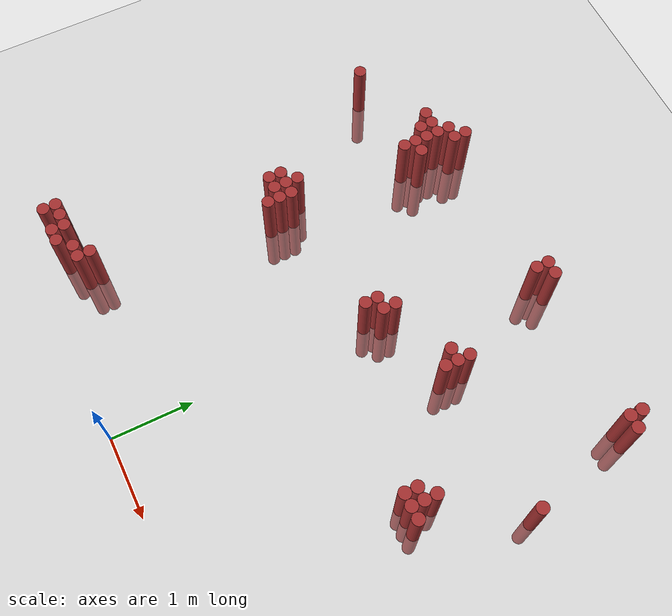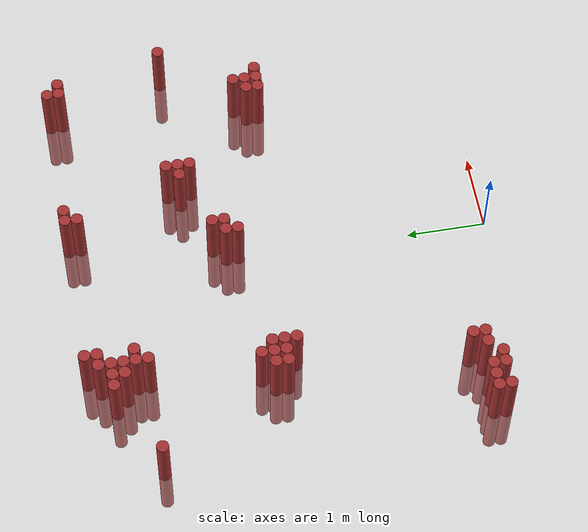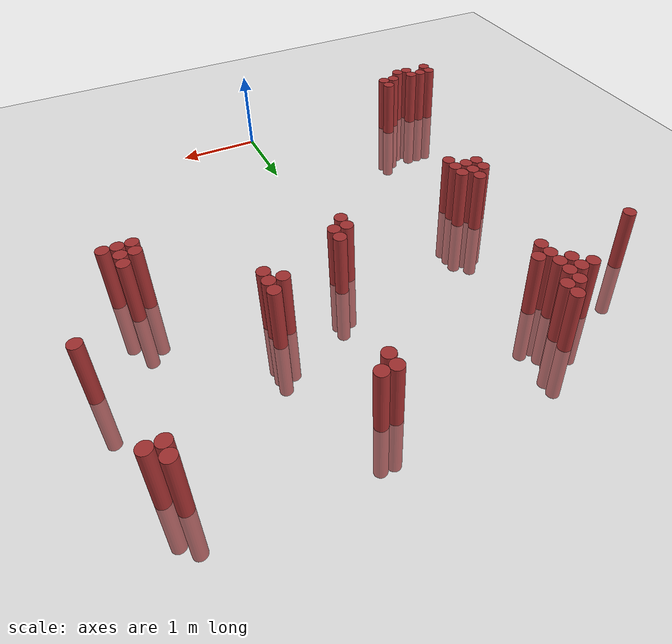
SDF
<sdf version="1.6">
 <world name="default">
  <model name="ground_plane">
   <static>1</static>
   <link name="link">
    <collision name="collision">
     <geometry><plane><normal>0 0 1</normal><size>100 100</size></plane></geometry>
     <surface><friction><ode><mu>100</mu><mu2>50</mu2></ode></friction></surface>
    </collision>
    <visual name="visual">
     <cast_shadows>0</cast_shadows>
     <geometry><plane><normal>0 0 1</normal><size>100 100</size></plane></geometry>
     <material>
      <script><uri>file://media/materials/scripts/gazebo.material</uri><name>Gazebo/Grey</name></script>
     </material>
    </visual>
   </link>
  </model>
  <model name="unit_cylinder_286">
   <static>1</static>
   <pose>-2.825000 4.525000 0.000000 0.000000 0.000000 0.000000</pose>
   <link name="link">
    <inertial>
     <mass>1</mass>
     <inertia><ixx>0.145833</ixx><ixy>0</ixy><ixz>0</ixz><iyy>0.145833</iyy><iyz>0</iyz><izz>0.125</izz></inertia>
    </inertial>
    <collision name="collision">
     <geometry><cylinder><radius>0.075000</radius><length>1.5</length></cylinder></geometry>
    </collision>
    <visual name="visual">
     <geometry><cylinder><radius>0.075000</radius><length>1.5</length></cylinder></geometry>
     <material>
      <ambient>0.648000 0.192000 0.192000 1</ambient>
      <diffuse>0.648000 0.192000 0.192000 1</diffuse>
     </material>
     <material>
      <script><name>Gazebo/Grey</name><uri>file://media/materials/scripts/gazebo.material</uri></script>
     </material>
    </visual>
   </link>
  </model>
  <model name="unit_cylinder_291">
   <static>1</static>
   <pose>-2.675000 0.325000 0.000000 0.000000 0.000000 0.000000</pose>
   <link name="link">
    <inertial>
     <mass>1</mass>
     <inertia><ixx>0.145833</ixx><ixy>0</ixy><ixz>0</ixz><iyy>0.145833</iyy><iyz>0</iyz><izz>0.125</izz></inertia>
    </inertial>
    <collision name="collision">
     <geometry><cylinder><radius>0.075000</radius><length>1.5</length></cylinder></geometry>
    </collision>
    <visual name="visual">
     <geometry><cylinder><radius>0.075000</radius><length>1.5</length></cylinder></geometry>
     <material>
      <ambient>0.648000 0.192000 0.192000 1</ambient>
      <diffuse>0.648000 0.192000 0.192000 1</diffuse>
     </material>
     <material>
      <script><name>Gazebo/Grey</name><uri>file://media/materials/scripts/gazebo.material</uri></script>
     </material>
    </visual>
   </link>
  </model>
  <model name="unit_cylinder_292">
   <static>1</static>
   <pose>-2.675000 0.475000 0.000000 0.000000 0.000000 0.000000</pose>
   <link name="link">
    <inertial>
     <mass>1</mass>
     <inertia><ixx>0.145833</ixx><ixy>0</ixy><ixz>0</ixz><iyy>0.145833</iyy><iyz>0</iyz><izz>0.125</izz></inertia>
    </inertial>
    <collision name="collision">
     <geometry><cylinder><radius>0.075000</radius><length>1.5</length></cylinder></geometry>
    </collision>
    <visual name="visual">
     <geometry><cylinder><radius>0.075000</radius><length>1.5</length></cylinder></geometry>
     <material>
      <ambient>0.648000 0.192000 0.192000 1</ambient>
      <diffuse>0.648000 0.192000 0.192000 1</diffuse>
     </material>
     <material>
      <script><name>Gazebo/Grey</name><uri>file://media/materials/scripts/gazebo.material</uri></script>
     </material>
    </visual>
   </link>
  </model>
  <model name="unit_cylinder_297">
   <static>1</static>
   <pose>-2.525000 0.475000 0.000000 0.000000 0.000000 0.000000</pose>
   <link name="link">
    <inertial>
     <mass>1</mass>
     <inertia><ixx>0.145833</ixx><ixy>0</ixy><ixz>0</ixz><iyy>0.145833</iyy><iyz>0</iyz><izz>0.125</izz></inertia>
    </inertial>
    <collision name="collision">
     <geometry><cylinder><radius>0.075000</radius><length>1.5</length></cylinder></geometry>
    </collision>
    <visual name="visual">
     <geometry><cylinder><radius>0.075000</radius><length>1.5</length></cylinder></geometry>
     <material>
      <ambient>0.648000 0.192000 0.192000 1</ambient>
      <diffuse>0.648000 0.192000 0.192000 1</diffuse>
     </material>
     <material>
      <script><name>Gazebo/Grey</name><uri>file://media/materials/scripts/gazebo.material</uri></script>
     </material>
    </visual>
   </link>
  </model>
  <model name="unit_cylinder_299">
   <static>1</static>
   <pose>-2.375000 0.325000 0.000000 0.000000 0.000000 0.000000</pose>
   <link name="link">
    <inertial>
     <mass>1</mass>
     <inertia><ixx>0.145833</ixx><ixy>0</ixy><ixz>0</ixz><iyy>0.145833</iyy><iyz>0</iyz><izz>0.125</izz></inertia>
    </inertial>
    <collision name="collision">
     <geometry><cylinder><radius>0.075000</radius><length>1.5</length></cylinder></geometry>
    </collision>
    <visual name="visual">
     <geometry><cylinder><radius>0.075000</radius><length>1.5</length></cylinder></geometry>
     <material>
      <ambient>0.648000 0.192000 0.192000 1</ambient>
      <diffuse>0.648000 0.192000 0.192000 1</diffuse>
     </material>
     <material>
      <script><name>Gazebo/Grey</name><uri>file://media/materials/scripts/gazebo.material</uri></script>
     </material>
    </visual>
   </link>
  </model>
  <model name="unit_cylinder_300">
   <static>1</static>
   <pose>-2.375000 0.475000 0.000000 0.000000 0.000000 0.000000</pose>
   <link name="link">
    <inertial>
     <mass>1</mass>
     <inertia><ixx>0.145833</ixx><ixy>0</ixy><ixz>0</ixz><iyy>0.145833</iyy><iyz>0</iyz><izz>0.125</izz></inertia>
    </inertial>
    <collision name="collision">
     <geometry><cylinder><radius>0.075000</radius><length>1.5</length></cylinder></geometry>
    </collision>
    <visual name="visual">
     <geometry><cylinder><radius>0.075000</radius><length>1.5</length></cylinder></geometry>
     <material>
      <ambient>0.648000 0.192000 0.192000 1</ambient>
      <diffuse>0.648000 0.192000 0.192000 1</diffuse>
     </material>
     <material>
      <script><name>Gazebo/Grey</name><uri>file://media/materials/scripts/gazebo.material</uri></script>
     </material>
    </visual>
   </link>
  </model>
  <model name="unit_cylinder_303">
   <static>1</static>
   <pose>-2.225000 0.325000 0.000000 0.000000 0.000000 0.000000</pose>
   <link name="link">
    <inertial>
     <mass>1</mass>
     <inertia><ixx>0.145833</ixx><ixy>0</ixy><ixz>0</ixz><iyy>0.145833</iyy><iyz>0</iyz><izz>0.125</izz></inertia>
    </inertial>
    <collision name="collision">
     <geometry><cylinder><radius>0.075000</radius><length>1.5</length></cylinder></geometry>
    </collision>
    <visual name="visual">
     <geometry><cylinder><radius>0.075000</radius><length>1.5</length></cylinder></geometry>
     <material>
      <ambient>0.648000 0.192000 0.192000 1</ambient>
      <diffuse>0.648000 0.192000 0.192000 1</diffuse>
     </material>
     <material>
      <script><name>Gazebo/Grey</name><uri>file://media/materials/scripts/gazebo.material</uri></script>
     </material>
    </visual>
   </link>
  </model>
  <model name="unit_cylinder_305">
   <static>1</static>
   <pose>-2.075000 0.475000 0.000000 0.000000 0.000000 0.000000</pose>
   <link name="link">
    <inertial>
     <mass>1</mass>
     <inertia><ixx>0.145833</ixx><ixy>0</ixy><ixz>0</ixz><iyy>0.145833</iyy><iyz>0</iyz><izz>0.125</izz></inertia>
    </inertial>
    <collision name="collision">
     <geometry><cylinder><radius>0.075000</radius><length>1.5</length></cylinder></geometry>
    </collision>
    <visual name="visual">
     <geometry><cylinder><radius>0.075000</radius><length>1.5</length></cylinder></geometry>
     <material>
      <ambient>0.648000 0.192000 0.192000 1</ambient>
      <diffuse>0.648000 0.192000 0.192000 1</diffuse>
     </material>
     <material>
      <script><name>Gazebo/Grey</name><uri>file://media/materials/scripts/gazebo.material</uri></script>
     </material>
    </visual>
   </link>
  </model>
  <model name="unit_cylinder_306">
   <static>1</static>
   <pose>-1.925000 0.475000 0.000000 0.000000 0.000000 0.000000</pose>
   <link name="link">
    <inertial>
     <mass>1</mass>
     <inertia><ixx>0.145833</ixx><ixy>0</ixy><ixz>0</ixz><iyy>0.145833</iyy><iyz>0</iyz><izz>0.125</izz></inertia>
    </inertial>
    <collision name="collision">
     <geometry><cylinder><radius>0.075000</radius><length>1.5</length></cylinder></geometry>
    </collision>
    <visual name="visual">
     <geometry><cylinder><radius>0.075000</radius><length>1.5</length></cylinder></geometry>
     <material>
      <ambient>0.648000 0.192000 0.192000 1</ambient>
      <diffuse>0.648000 0.192000 0.192000 1</diffuse>
     </material>
     <material>
      <script><name>Gazebo/Grey</name><uri>file://media/materials/scripts/gazebo.material</uri></script>
     </material>
    </visual>
   </link>
  </model>
  <model name="unit_cylinder_307">
   <static>1</static>
   <pose>-1.925000 0.625000 0.000000 0.000000 0.000000 0.000000</pose>
   <link name="link">
    <inertial>
     <mass>1</mass>
     <inertia><ixx>0.145833</ixx><ixy>0</ixy><ixz>0</ixz><iyy>0.145833</iyy><iyz>0</iyz><izz>0.125</izz></inertia>
    </inertial>
    <collision name="collision">
     <geometry><cylinder><radius>0.075000</radius><length>1.5</length></cylinder></geometry>
    </collision>
    <visual name="visual">
     <geometry><cylinder><radius>0.075000</radius><length>1.5</length></cylinder></geometry>
     <material>
      <ambient>0.648000 0.192000 0.192000 1</ambient>
      <diffuse>0.648000 0.192000 0.192000 1</diffuse>
     </material>
     <material>
      <script><name>Gazebo/Grey</name><uri>file://media/materials/scripts/gazebo.material</uri></script>
     </material>
    </visual>
   </link>
  </model>
  <model name="unit_cylinder_308">
   <static>1</static>
   <pose>-1.925000 2.875000 0.000000 0.000000 0.000000 0.000000</pose>
   <link name="link">
    <inertial>
     <mass>1</mass>
     <inertia><ixx>0.145833</ixx><ixy>0</ixy><ixz>0</ixz><iyy>0.145833</iyy><iyz>0</iyz><izz>0.125</izz></inertia>
    </inertial>
    <collision name="collision">
     <geometry><cylinder><radius>0.075000</radius><length>1.5</length></cylinder></geometry>
    </collision>
    <visual name="visual">
     <geometry><cylinder><radius>0.075000</radius><length>1.5</length></cylinder></geometry>
     <material>
      <ambient>0.648000 0.192000 0.192000 1</ambient>
      <diffuse>0.648000 0.192000 0.192000 1</diffuse>
     </material>
     <material>
      <script><name>Gazebo/Grey</name><uri>file://media/materials/scripts/gazebo.material</uri></script>
     </material>
    </visual>
   </link>
  </model>
  <model name="unit_cylinder_309">
   <static>1</static>
   <pose>-1.925000 3.025000 0.000000 0.000000 0.000000 0.000000</pose>
   <link name="link">
    <inertial>
     <mass>1</mass>
     <inertia><ixx>0.145833</ixx><ixy>0</ixy><ixz>0</ixz><iyy>0.145833</iyy><iyz>0</iyz><izz>0.125</izz></inertia>
    </inertial>
    <collision name="collision">
     <geometry><cylinder><radius>0.075000</radius><length>1.5</length></cylinder></geometry>
    </collision>
    <visual name="visual">
     <geometry><cylinder><radius>0.075000</radius><length>1.5</length></cylinder></geometry>
     <material>
      <ambient>0.648000 0.192000 0.192000 1</ambient>
      <diffuse>0.648000 0.192000 0.192000 1</diffuse>
     </material>
     <material>
      <script><name>Gazebo/Grey</name><uri>file://media/materials/scripts/gazebo.material</uri></script>
     </material>
    </visual>
   </link>
  </model>
  <model name="unit_cylinder_310">
   <static>1</static>
   <pose>-1.925000 4.975000 0.000000 0.000000 0.000000 0.000000</pose>
   <link name="link">
    <inertial>
     <mass>1</mass>
     <inertia><ixx>0.145833</ixx><ixy>0</ixy><ixz>0</ixz><iyy>0.145833</iyy><iyz>0</iyz><izz>0.125</izz></inertia>
    </inertial>
    <collision name="collision">
     <geometry><cylinder><radius>0.075000</radius><length>1.5</length></cylinder></geometry>
    </collision>
    <visual name="visual">
     <geometry><cylinder><radius>0.075000</radius><length>1.5</length></cylinder></geometry>
     <material>
      <ambient>0.648000 0.192000 0.192000 1</ambient>
      <diffuse>0.648000 0.192000 0.192000 1</diffuse>
     </material>
     <material>
      <script><name>Gazebo/Grey</name><uri>file://media/materials/scripts/gazebo.material</uri></script>
     </material>
    </visual>
   </link>
  </model>
  <model name="unit_cylinder_311">
   <static>1</static>
   <pose>-1.775000 2.875000 0.000000 0.000000 0.000000 0.000000</pose>
   <link name="link">
    <inertial>
     <mass>1</mass>
     <inertia><ixx>0.145833</ixx><ixy>0</ixy><ixz>0</ixz><iyy>0.145833</iyy><iyz>0</iyz><izz>0.125</izz></inertia>
    </inertial>
    <collision name="collision">
     <geometry><cylinder><radius>0.075000</radius><length>1.5</length></cylinder></geometry>
    </collision>
    <visual name="visual">
     <geometry><cylinder><radius>0.075000</radius><length>1.5</length></cylinder></geometry>
     <material>
      <ambient>0.648000 0.192000 0.192000 1</ambient>
      <diffuse>0.648000 0.192000 0.192000 1</diffuse>
     </material>
     <material>
      <script><name>Gazebo/Grey</name><uri>file://media/materials/scripts/gazebo.material</uri></script>
     </material>
    </visual>
   </link>
  </model>
  <model name="unit_cylinder_312">
   <static>1</static>
   <pose>-1.775000 3.025000 0.000000 0.000000 0.000000 0.000000</pose>
   <link name="link">
    <inertial>
     <mass>1</mass>
     <inertia><ixx>0.145833</ixx><ixy>0</ixy><ixz>0</ixz><iyy>0.145833</iyy><iyz>0</iyz><izz>0.125</izz></inertia>
    </inertial>
    <collision name="collision">
     <geometry><cylinder><radius>0.075000</radius><length>1.5</length></cylinder></geometry>
    </collision>
    <visual name="visual">
     <geometry><cylinder><radius>0.075000</radius><length>1.5</length></cylinder></geometry>
     <material>
      <ambient>0.648000 0.192000 0.192000 1</ambient>
      <diffuse>0.648000 0.192000 0.192000 1</diffuse>
     </material>
     <material>
      <script><name>Gazebo/Grey</name><uri>file://media/materials/scripts/gazebo.material</uri></script>
     </material>
    </visual>
   </link>
  </model>
  <model name="unit_cylinder_313">
   <static>1</static>
   <pose>-1.775000 3.175000 0.000000 0.000000 0.000000 0.000000</pose>
   <link name="link">
    <inertial>
     <mass>1</mass>
     <inertia><ixx>0.145833</ixx><ixy>0</ixy><ixz>0</ixz><iyy>0.145833</iyy><iyz>0</iyz><izz>0.125</izz></inertia>
    </inertial>
    <collision name="collision">
     <geometry><cylinder><radius>0.075000</radius><length>1.5</length></cylinder></geometry>
    </collision>
    <visual name="visual">
     <geometry><cylinder><radius>0.075000</radius><length>1.5</length></cylinder></geometry>
     <material>
      <ambient>0.648000 0.192000 0.192000 1</ambient>
      <diffuse>0.648000 0.192000 0.192000 1</diffuse>
     </material>
     <material>
      <script><name>Gazebo/Grey</name><uri>file://media/materials/scripts/gazebo.material</uri></script>
     </material>
    </visual>
   </link>
  </model>
  <model name="unit_cylinder_314">
   <static>1</static>
   <pose>-1.775000 4.825000 0.000000 0.000000 0.000000 0.000000</pose>
   <link name="link">
    <inertial>
     <mass>1</mass>
     <inertia><ixx>0.145833</ixx><ixy>0</ixy><ixz>0</ixz><iyy>0.145833</iyy><iyz>0</iyz><izz>0.125</izz></inertia>
    </inertial>
    <collision name="collision">
     <geometry><cylinder><radius>0.075000</radius><length>1.5</length></cylinder></geometry>
    </collision>
    <visual name="visual">
     <geometry><cylinder><radius>0.075000</radius><length>1.5</length></cylinder></geometry>
     <material>
      <ambient>0.648000 0.192000 0.192000 1</ambient>
      <diffuse>0.648000 0.192000 0.192000 1</diffuse>
     </material>
     <material>
      <script><name>Gazebo/Grey</name><uri>file://media/materials/scripts/gazebo.material</uri></script>
     </material>
    </visual>
   </link>
  </model>
  <model name="unit_cylinder_315">
   <static>1</static>
   <pose>-1.775000 4.975000 0.000000 0.000000 0.000000 0.000000</pose>
   <link name="link">
    <inertial>
     <mass>1</mass>
     <inertia><ixx>0.145833</ixx><ixy>0</ixy><ixz>0</ixz><iyy>0.145833</iyy><iyz>0</iyz><izz>0.125</izz></inertia>
    </inertial>
    <collision name="collision">
     <geometry><cylinder><radius>0.075000</radius><length>1.5</length></cylinder></geometry>
    </collision>
    <visual name="visual">
     <geometry><cylinder><radius>0.075000</radius><length>1.5</length></cylinder></geometry>
     <material>
      <ambient>0.648000 0.192000 0.192000 1</ambient>
      <diffuse>0.648000 0.192000 0.192000 1</diffuse>
     </material>
     <material>
      <script><name>Gazebo/Grey</name><uri>file://media/materials/scripts/gazebo.material</uri></script>
     </material>
    </visual>
   </link>
  </model>
  <model name="unit_cylinder_318">
   <static>1</static>
   <pose>-1.625000 2.725000 0.000000 0.000000 0.000000 0.000000</pose>
   <link name="link">
    <inertial>
     <mass>1</mass>
     <inertia><ixx>0.145833</ixx><ixy>0</ixy><ixz>0</ixz><iyy>0.145833</iyy><iyz>0</iyz><izz>0.125</izz></inertia>
    </inertial>
    <collision name="collision">
     <geometry><cylinder><radius>0.075000</radius><length>1.5</length></cylinder></geometry>
    </collision>
    <visual name="visual">
     <geometry><cylinder><radius>0.075000</radius><length>1.5</length></cylinder></geometry>
     <material>
      <ambient>0.648000 0.192000 0.192000 1</ambient>
      <diffuse>0.648000 0.192000 0.192000 1</diffuse>
     </material>
     <material>
      <script><name>Gazebo/Grey</name><uri>file://media/materials/scripts/gazebo.material</uri></script>
     </material>
    </visual>
   </link>
  </model>
  <model name="unit_cylinder_319">
   <static>1</static>
   <pose>-1.625000 2.875000 0.000000 0.000000 0.000000 0.000000</pose>
   <link name="link">
    <inertial>
     <mass>1</mass>
     <inertia><ixx>0.145833</ixx><ixy>0</ixy><ixz>0</ixz><iyy>0.145833</iyy><iyz>0</iyz><izz>0.125</izz></inertia>
    </inertial>
    <collision name="collision">
     <geometry><cylinder><radius>0.075000</radius><length>1.5</length></cylinder></geometry>
    </collision>
    <visual name="visual">
     <geometry><cylinder><radius>0.075000</radius><length>1.5</length></cylinder></geometry>
     <material>
      <ambient>0.648000 0.192000 0.192000 1</ambient>
      <diffuse>0.648000 0.192000 0.192000 1</diffuse>
     </material>
     <material>
      <script><name>Gazebo/Grey</name><uri>file://media/materials/scripts/gazebo.material</uri></script>
     </material>
    </visual>
   </link>
  </model>
  <model name="unit_cylinder_320">
   <static>1</static>
   <pose>-1.625000 3.025000 0.000000 0.000000 0.000000 0.000000</pose>
   <link name="link">
    <inertial>
     <mass>1</mass>
     <inertia><ixx>0.145833</ixx><ixy>0</ixy><ixz>0</ixz><iyy>0.145833</iyy><iyz>0</iyz><izz>0.125</izz></inertia>
    </inertial>
    <collision name="collision">
     <geometry><cylinder><radius>0.075000</radius><length>1.5</length></cylinder></geometry>
    </collision>
    <visual name="visual">
     <geometry><cylinder><radius>0.075000</radius><length>1.5</length></cylinder></geometry>
     <material>
      <ambient>0.648000 0.192000 0.192000 1</ambient>
      <diffuse>0.648000 0.192000 0.192000 1</diffuse>
     </material>
     <material>
      <script><name>Gazebo/Grey</name><uri>file://media/materials/scripts/gazebo.material</uri></script>
     </material>
    </visual>
   </link>
  </model>
  <model name="unit_cylinder_321">
   <static>1</static>
   <pose>-1.625000 4.525000 0.000000 0.000000 0.000000 0.000000</pose>
   <link name="link">
    <inertial>
     <mass>1</mass>
     <inertia><ixx>0.145833</ixx><ixy>0</ixy><ixz>0</ixz><iyy>0.145833</iyy><iyz>0</iyz><izz>0.125</izz></inertia>
    </inertial>
    <collision name="collision">
     <geometry><cylinder><radius>0.075000</radius><length>1.5</length></cylinder></geometry>
    </collision>
    <visual name="visual">
     <geometry><cylinder><radius>0.075000</radius><length>1.5</length></cylinder></geometry>
     <material>
      <ambient>0.648000 0.192000 0.192000 1</ambient>
      <diffuse>0.648000 0.192000 0.192000 1</diffuse>
     </material>
     <material>
      <script><name>Gazebo/Grey</name><uri>file://media/materials/scripts/gazebo.material</uri></script>
     </material>
    </visual>
   </link>
  </model>
  <model name="unit_cylinder_322">
   <static>1</static>
   <pose>-1.625000 4.675000 0.000000 0.000000 0.000000 0.000000</pose>
   <link name="link">
    <inertial>
     <mass>1</mass>
     <inertia><ixx>0.145833</ixx><ixy>0</ixy><ixz>0</ixz><iyy>0.145833</iyy><iyz>0</iyz><izz>0.125</izz></inertia>
    </inertial>
    <collision name="collision">
     <geometry><cylinder><radius>0.075000</radius><length>1.5</length></cylinder></geometry>
    </collision>
    <visual name="visual">
     <geometry><cylinder><radius>0.075000</radius><length>1.5</length></cylinder></geometry>
     <material>
      <ambient>0.648000 0.192000 0.192000 1</ambient>
      <diffuse>0.648000 0.192000 0.192000 1</diffuse>
     </material>
     <material>
      <script><name>Gazebo/Grey</name><uri>file://media/materials/scripts/gazebo.material</uri></script>
     </material>
    </visual>
   </link>
  </model>
  <model name="unit_cylinder_323">
   <static>1</static>
   <pose>-1.625000 4.825000 0.000000 0.000000 0.000000 0.000000</pose>
   <link name="link">
    <inertial>
     <mass>1</mass>
     <inertia><ixx>0.145833</ixx><ixy>0</ixy><ixz>0</ixz><iyy>0.145833</iyy><iyz>0</iyz><izz>0.125</izz></inertia>
    </inertial>
    <collision name="collision">
     <geometry><cylinder><radius>0.075000</radius><length>1.5</length></cylinder></geometry>
    </collision>
    <visual name="visual">
     <geometry><cylinder><radius>0.075000</radius><length>1.5</length></cylinder></geometry>
     <material>
      <ambient>0.648000 0.192000 0.192000 1</ambient>
      <diffuse>0.648000 0.192000 0.192000 1</diffuse>
     </material>
     <material>
      <script><name>Gazebo/Grey</name><uri>file://media/materials/scripts/gazebo.material</uri></script>
     </material>
    </visual>
   </link>
  </model>
  <model name="unit_cylinder_324">
   <static>1</static>
   <pose>-1.625000 4.975000 0.000000 0.000000 0.000000 0.000000</pose>
   <link name="link">
    <inertial>
     <mass>1</mass>
     <inertia><ixx>0.145833</ixx><ixy>0</ixy><ixz>0</ixz><iyy>0.145833</iyy><iyz>0</iyz><izz>0.125</izz></inertia>
    </inertial>
    <collision name="collision">
     <geometry><cylinder><radius>0.075000</radius><length>1.5</length></cylinder></geometry>
    </collision>
    <visual name="visual">
     <geometry><cylinder><radius>0.075000</radius><length>1.5</length></cylinder></geometry>
     <material>
      <ambient>0.648000 0.192000 0.192000 1</ambient>
      <diffuse>0.648000 0.192000 0.192000 1</diffuse>
     </material>
     <material>
      <script><name>Gazebo/Grey</name><uri>file://media/materials/scripts/gazebo.material</uri></script>
     </material>
    </visual>
   </link>
  </model>
  <model name="unit_cylinder_325">
   <static>1</static>
   <pose>-1.625000 5.125000 0.000000 0.000000 0.000000 0.000000</pose>
   <link name="link">
    <inertial>
     <mass>1</mass>
     <inertia><ixx>0.145833</ixx><ixy>0</ixy><ixz>0</ixz><iyy>0.145833</iyy><iyz>0</iyz><izz>0.125</izz></inertia>
    </inertial>
    <collision name="collision">
     <geometry><cylinder><radius>0.075000</radius><length>1.5</length></cylinder></geometry>
    </collision>
    <visual name="visual">
     <geometry><cylinder><radius>0.075000</radius><length>1.5</length></cylinder></geometry>
     <material>
      <ambient>0.648000 0.192000 0.192000 1</ambient>
      <diffuse>0.648000 0.192000 0.192000 1</diffuse>
     </material>
     <material>
      <script><name>Gazebo/Grey</name><uri>file://media/materials/scripts/gazebo.material</uri></script>
     </material>
    </visual>
   </link>
  </model>
  <model name="unit_cylinder_327">
   <static>1</static>
   <pose>-1.475000 4.675000 0.000000 0.000000 0.000000 0.000000</pose>
   <link name="link">
    <inertial>
     <mass>1</mass>
     <inertia><ixx>0.145833</ixx><ixy>0</ixy><ixz>0</ixz><iyy>0.145833</iyy><iyz>0</iyz><izz>0.125</izz></inertia>
    </inertial>
    <collision name="collision">
     <geometry><cylinder><radius>0.075000</radius><length>1.5</length></cylinder></geometry>
    </collision>
    <visual name="visual">
     <geometry><cylinder><radius>0.075000</radius><length>1.5</length></cylinder></geometry>
     <material>
      <ambient>0.648000 0.192000 0.192000 1</ambient>
      <diffuse>0.648000 0.192000 0.192000 1</diffuse>
     </material>
     <material>
      <script><name>Gazebo/Grey</name><uri>file://media/materials/scripts/gazebo.material</uri></script>
     </material>
    </visual>
   </link>
  </model>
  <model name="unit_cylinder_328">
   <static>1</static>
   <pose>-1.475000 5.125000 0.000000 0.000000 0.000000 0.000000</pose>
   <link name="link">
    <inertial>
     <mass>1</mass>
     <inertia><ixx>0.145833</ixx><ixy>0</ixy><ixz>0</ixz><iyy>0.145833</iyy><iyz>0</iyz><izz>0.125</izz></inertia>
    </inertial>
    <collision name="collision">
     <geometry><cylinder><radius>0.075000</radius><length>1.5</length></cylinder></geometry>
    </collision>
    <visual name="visual">
     <geometry><cylinder><radius>0.075000</radius><length>1.5</length></cylinder></geometry>
     <material>
      <ambient>0.648000 0.192000 0.192000 1</ambient>
      <diffuse>0.648000 0.192000 0.192000 1</diffuse>
     </material>
     <material>
      <script><name>Gazebo/Grey</name><uri>file://media/materials/scripts/gazebo.material</uri></script>
     </material>
    </visual>
   </link>
  </model>
  <model name="unit_cylinder_329">
   <static>1</static>
   <pose>-1.475000 5.275000 0.000000 0.000000 0.000000 0.000000</pose>
   <link name="link">
    <inertial>
     <mass>1</mass>
     <inertia><ixx>0.145833</ixx><ixy>0</ixy><ixz>0</ixz><iyy>0.145833</iyy><iyz>0</iyz><izz>0.125</izz></inertia>
    </inertial>
    <collision name="collision">
     <geometry><cylinder><radius>0.075000</radius><length>1.5</length></cylinder></geometry>
    </collision>
    <visual name="visual">
     <geometry><cylinder><radius>0.075000</radius><length>1.5</length></cylinder></geometry>
     <material>
      <ambient>0.648000 0.192000 0.192000 1</ambient>
      <diffuse>0.648000 0.192000 0.192000 1</diffuse>
     </material>
     <material>
      <script><name>Gazebo/Grey</name><uri>file://media/materials/scripts/gazebo.material</uri></script>
     </material>
    </visual>
   </link>
  </model>
  <model name="unit_cylinder_336">
   <static>1</static>
   <pose>0.025000 3.175000 0.000000 0.000000 0.000000 0.000000</pose>
   <link name="link">
    <inertial>
     <mass>1</mass>
     <inertia><ixx>0.145833</ixx><ixy>0</ixy><ixz>0</ixz><iyy>0.145833</iyy><iyz>0</iyz><izz>0.125</izz></inertia>
    </inertial>
    <collision name="collision">
     <geometry><cylinder><radius>0.075000</radius><length>1.5</length></cylinder></geometry>
    </collision>
    <visual name="visual">
     <geometry><cylinder><radius>0.075000</radius><length>1.5</length></cylinder></geometry>
     <material>
      <ambient>0.648000 0.192000 0.192000 1</ambient>
      <diffuse>0.648000 0.192000 0.192000 1</diffuse>
     </material>
     <material>
      <script><name>Gazebo/Grey</name><uri>file://media/materials/scripts/gazebo.material</uri></script>
     </material>
    </visual>
   </link>
  </model>
  <model name="unit_cylinder_337">
   <static>1</static>
   <pose>0.025000 3.325000 0.000000 0.000000 0.000000 0.000000</pose>
   <link name="link">
    <inertial>
     <mass>1</mass>
     <inertia><ixx>0.145833</ixx><ixy>0</ixy><ixz>0</ixz><iyy>0.145833</iyy><iyz>0</iyz><izz>0.125</izz></inertia>
    </inertial>
    <collision name="collision">
     <geometry><cylinder><radius>0.075000</radius><length>1.5</length></cylinder></geometry>
    </collision>
    <visual name="visual">
     <geometry><cylinder><radius>0.075000</radius><length>1.5</length></cylinder></geometry>
     <material>
      <ambient>0.648000 0.192000 0.192000 1</ambient>
      <diffuse>0.648000 0.192000 0.192000 1</diffuse>
     </material>
     <material>
      <script><name>Gazebo/Grey</name><uri>file://media/materials/scripts/gazebo.material</uri></script>
     </material>
    </visual>
   </link>
  </model>
  <model name="unit_cylinder_338">
   <static>1</static>
   <pose>0.175000 3.325000 0.000000 0.000000 0.000000 0.000000</pose>
   <link name="link">
    <inertial>
     <mass>1</mass>
     <inertia><ixx>0.145833</ixx><ixy>0</ixy><ixz>0</ixz><iyy>0.145833</iyy><iyz>0</iyz><izz>0.125</izz></inertia>
    </inertial>
    <collision name="collision">
     <geometry><cylinder><radius>0.075000</radius><length>1.5</length></cylinder></geometry>
    </collision>
    <visual name="visual">
     <geometry><cylinder><radius>0.075000</radius><length>1.5</length></cylinder></geometry>
     <material>
      <ambient>0.648000 0.192000 0.192000 1</ambient>
      <diffuse>0.648000 0.192000 0.192000 1</diffuse>
     </material>
     <material>
      <script><name>Gazebo/Grey</name><uri>file://media/materials/scripts/gazebo.material</uri></script>
     </material>
    </visual>
   </link>
  </model>
  <model name="unit_cylinder_339">
   <static>1</static>
   <pose>0.175000 3.475000 0.000000 0.000000 0.000000 0.000000</pose>
   <link name="link">
    <inertial>
     <mass>1</mass>
     <inertia><ixx>0.145833</ixx><ixy>0</ixy><ixz>0</ixz><iyy>0.145833</iyy><iyz>0</iyz><izz>0.125</izz></inertia>
    </inertial>
    <collision name="collision">
     <geometry><cylinder><radius>0.075000</radius><length>1.5</length></cylinder></geometry>
    </collision>
    <visual name="visual">
     <geometry><cylinder><radius>0.075000</radius><length>1.5</length></cylinder></geometry>
     <material>
      <ambient>0.648000 0.192000 0.192000 1</ambient>
      <diffuse>0.648000 0.192000 0.192000 1</diffuse>
     </material>
     <material>
      <script><name>Gazebo/Grey</name><uri>file://media/materials/scripts/gazebo.material</uri></script>
     </material>
    </visual>
   </link>
  </model>
  <model name="unit_cylinder_340">
   <static>1</static>
   <pose>0.475000 5.125000 0.000000 0.000000 0.000000 0.000000</pose>
   <link name="link">
    <inertial>
     <mass>1</mass>
     <inertia><ixx>0.145833</ixx><ixy>0</ixy><ixz>0</ixz><iyy>0.145833</iyy><iyz>0</iyz><izz>0.125</izz></inertia>
    </inertial>
    <collision name="collision">
     <geometry><cylinder><radius>0.075000</radius><length>1.5</length></cylinder></geometry>
    </collision>
    <visual name="visual">
     <geometry><cylinder><radius>0.075000</radius><length>1.5</length></cylinder></geometry>
     <material>
      <ambient>0.648000 0.192000 0.192000 1</ambient>
      <diffuse>0.648000 0.192000 0.192000 1</diffuse>
     </material>
     <material>
      <script><name>Gazebo/Grey</name><uri>file://media/materials/scripts/gazebo.material</uri></script>
     </material>
    </visual>
   </link>
  </model>
  <model name="unit_cylinder_341">
   <static>1</static>
   <pose>0.475000 5.275000 0.000000 0.000000 0.000000 0.000000</pose>
   <link name="link">
    <inertial>
     <mass>1</mass>
     <inertia><ixx>0.145833</ixx><ixy>0</ixy><ixz>0</ixz><iyy>0.145833</iyy><iyz>0</iyz><izz>0.125</izz></inertia>
    </inertial>
    <collision name="collision">
     <geometry><cylinder><radius>0.075000</radius><length>1.5</length></cylinder></geometry>
    </collision>
    <visual name="visual">
     <geometry><cylinder><radius>0.075000</radius><length>1.5</length></cylinder></geometry>
     <material>
      <ambient>0.648000 0.192000 0.192000 1</ambient>
      <diffuse>0.648000 0.192000 0.192000 1</diffuse>
     </material>
     <material>
      <script><name>Gazebo/Grey</name><uri>file://media/materials/scripts/gazebo.material</uri></script>
     </material>
    </visual>
   </link>
  </model>
  <model name="unit_cylinder_342">
   <static>1</static>
   <pose>0.625000 5.275000 0.000000 0.000000 0.000000 0.000000</pose>
   <link name="link">
    <inertial>
     <mass>1</mass>
     <inertia><ixx>0.145833</ixx><ixy>0</ixy><ixz>0</ixz><iyy>0.145833</iyy><iyz>0</iyz><izz>0.125</izz></inertia>
    </inertial>
    <collision name="collision">
     <geometry><cylinder><radius>0.075000</radius><length>1.5</length></cylinder></geometry>
    </collision>
    <visual name="visual">
     <geometry><cylinder><radius>0.075000</radius><length>1.5</length></cylinder></geometry>
     <material>
      <ambient>0.648000 0.192000 0.192000 1</ambient>
      <diffuse>0.648000 0.192000 0.192000 1</diffuse>
     </material>
     <material>
      <script><name>Gazebo/Grey</name><uri>file://media/materials/scripts/gazebo.material</uri></script>
     </material>
    </visual>
   </link>
  </model>
  <model name="unit_cylinder_346">
   <static>1</static>
   <pose>0.925000 3.775000 0.000000 0.000000 0.000000 0.000000</pose>
   <link name="link">
    <inertial>
     <mass>1</mass>
     <inertia><ixx>0.145833</ixx><ixy>0</ixy><ixz>0</ixz><iyy>0.145833</iyy><iyz>0</iyz><izz>0.125</izz></inertia>
    </inertial>
    <collision name="collision">
     <geometry><cylinder><radius>0.075000</radius><length>1.5</length></cylinder></geometry>
    </collision>
    <visual name="visual">
     <geometry><cylinder><radius>0.075000</radius><length>1.5</length></cylinder></geometry>
     <material>
      <ambient>0.648000 0.192000 0.192000 1</ambient>
      <diffuse>0.648000 0.192000 0.192000 1</diffuse>
     </material>
     <material>
      <script><name>Gazebo/Grey</name><uri>file://media/materials/scripts/gazebo.material</uri></script>
     </material>
    </visual>
   </link>
  </model>
  <model name="unit_cylinder_348">
   <static>1</static>
   <pose>1.075000 3.625000 0.000000 0.000000 0.000000 0.000000</pose>
   <link name="link">
    <inertial>
     <mass>1</mass>
     <inertia><ixx>0.145833</ixx><ixy>0</ixy><ixz>0</ixz><iyy>0.145833</iyy><iyz>0</iyz><izz>0.125</izz></inertia>
    </inertial>
    <collision name="collision">
     <geometry><cylinder><radius>0.075000</radius><length>1.5</length></cylinder></geometry>
    </collision>
    <visual name="visual">
     <geometry><cylinder><radius>0.075000</radius><length>1.5</length></cylinder></geometry>
     <material>
      <ambient>0.648000 0.192000 0.192000 1</ambient>
      <diffuse>0.648000 0.192000 0.192000 1</diffuse>
     </material>
     <material>
      <script><name>Gazebo/Grey</name><uri>file://media/materials/scripts/gazebo.material</uri></script>
     </material>
    </visual>
   </link>
  </model>
  <model name="unit_cylinder_349">
   <static>1</static>
   <pose>1.075000 3.775000 0.000000 0.000000 0.000000 0.000000</pose>
   <link name="link">
    <inertial>
     <mass>1</mass>
     <inertia><ixx>0.145833</ixx><ixy>0</ixy><ixz>0</ixz><iyy>0.145833</iyy><iyz>0</iyz><izz>0.125</izz></inertia>
    </inertial>
    <collision name="collision">
     <geometry><cylinder><radius>0.075000</radius><length>1.5</length></cylinder></geometry>
    </collision>
    <visual name="visual">
     <geometry><cylinder><radius>0.075000</radius><length>1.5</length></cylinder></geometry>
     <material>
      <ambient>0.648000 0.192000 0.192000 1</ambient>
      <diffuse>0.648000 0.192000 0.192000 1</diffuse>
     </material>
     <material>
      <script><name>Gazebo/Grey</name><uri>file://media/materials/scripts/gazebo.material</uri></script>
     </material>
    </visual>
   </link>
  </model>
  <model name="unit_cylinder_350">
   <static>1</static>
   <pose>1.075000 3.925000 0.000000 0.000000 0.000000 0.000000</pose>
   <link name="link">
    <inertial>
     <mass>1</mass>
     <inertia><ixx>0.145833</ixx><ixy>0</ixy><ixz>0</ixz><iyy>0.145833</iyy><iyz>0</iyz><izz>0.125</izz></inertia>
    </inertial>
    <collision name="collision">
     <geometry><cylinder><radius>0.075000</radius><length>1.5</length></cylinder></geometry>
    </collision>
    <visual name="visual">
     <geometry><cylinder><radius>0.075000</radius><length>1.5</length></cylinder></geometry>
     <material>
      <ambient>0.648000 0.192000 0.192000 1</ambient>
      <diffuse>0.648000 0.192000 0.192000 1</diffuse>
     </material>
     <material>
      <script><name>Gazebo/Grey</name><uri>file://media/materials/scripts/gazebo.material</uri></script>
     </material>
    </visual>
   </link>
  </model>
  <model name="unit_cylinder_354">
   <static>1</static>
   <pose>2.125000 2.575000 0.000000 0.000000 0.000000 0.000000</pose>
   <link name="link">
    <inertial>
     <mass>1</mass>
     <inertia><ixx>0.145833</ixx><ixy>0</ixy><ixz>0</ixz><iyy>0.145833</iyy><iyz>0</iyz><izz>0.125</izz></inertia>
    </inertial>
    <collision name="collision">
     <geometry><cylinder><radius>0.075000</radius><length>1.5</length></cylinder></geometry>
    </collision>
    <visual name="visual">
     <geometry><cylinder><radius>0.075000</radius><length>1.5</length></cylinder></geometry>
     <material>
      <ambient>0.648000 0.192000 0.192000 1</ambient>
      <diffuse>0.648000 0.192000 0.192000 1</diffuse>
     </material>
     <material>
      <script><name>Gazebo/Grey</name><uri>file://media/materials/scripts/gazebo.material</uri></script>
     </material>
    </visual>
   </link>
  </model>
  <model name="unit_cylinder_355">
   <static>1</static>
   <pose>2.125000 2.725000 0.000000 0.000000 0.000000 0.000000</pose>
   <link name="link">
    <inertial>
     <mass>1</mass>
     <inertia><ixx>0.145833</ixx><ixy>0</ixy><ixz>0</ixz><iyy>0.145833</iyy><iyz>0</iyz><izz>0.125</izz></inertia>
    </inertial>
    <collision name="collision">
     <geometry><cylinder><radius>0.075000</radius><length>1.5</length></cylinder></geometry>
    </collision>
    <visual name="visual">
     <geometry><cylinder><radius>0.075000</radius><length>1.5</length></cylinder></geometry>
     <material>
      <ambient>0.648000 0.192000 0.192000 1</ambient>
      <diffuse>0.648000 0.192000 0.192000 1</diffuse>
     </material>
     <material>
      <script><name>Gazebo/Grey</name><uri>file://media/materials/scripts/gazebo.material</uri></script>
     </material>
    </visual>
   </link>
  </model>
  <model name="unit_cylinder_356">
   <static>1</static>
   <pose>2.275000 2.575000 0.000000 0.000000 0.000000 0.000000</pose>
   <link name="link">
    <inertial>
     <mass>1</mass>
     <inertia><ixx>0.145833</ixx><ixy>0</ixy><ixz>0</ixz><iyy>0.145833</iyy><iyz>0</iyz><izz>0.125</izz></inertia>
    </inertial>
    <collision name="collision">
     <geometry><cylinder><radius>0.075000</radius><length>1.5</length></cylinder></geometry>
    </collision>
    <visual name="visual">
     <geometry><cylinder><radius>0.075000</radius><length>1.5</length></cylinder></geometry>
     <material>
      <ambient>0.648000 0.192000 0.192000 1</ambient>
      <diffuse>0.648000 0.192000 0.192000 1</diffuse>
     </material>
     <material>
      <script><name>Gazebo/Grey</name><uri>file://media/materials/scripts/gazebo.material</uri></script>
     </material>
    </visual>
   </link>
  </model>
  <model name="unit_cylinder_357">
   <static>1</static>
   <pose>2.275000 2.725000 0.000000 0.000000 0.000000 0.000000</pose>
   <link name="link">
    <inertial>
     <mass>1</mass>
     <inertia><ixx>0.145833</ixx><ixy>0</ixy><ixz>0</ixz><iyy>0.145833</iyy><iyz>0</iyz><izz>0.125</izz></inertia>
    </inertial>
    <collision name="collision">
     <geometry><cylinder><radius>0.075000</radius><length>1.5</length></cylinder></geometry>
    </collision>
    <visual name="visual">
     <geometry><cylinder><radius>0.075000</radius><length>1.5</length></cylinder></geometry>
     <material>
      <ambient>0.648000 0.192000 0.192000 1</ambient>
      <diffuse>0.648000 0.192000 0.192000 1</diffuse>
     </material>
     <material>
      <script><name>Gazebo/Grey</name><uri>file://media/materials/scripts/gazebo.material</uri></script>
     </material>
    </visual>
   </link>
  </model>
  <model name="unit_cylinder_358">
   <static>1</static>
   <pose>2.275000 2.875000 0.000000 0.000000 0.000000 0.000000</pose>
   <link name="link">
    <inertial>
     <mass>1</mass>
     <inertia><ixx>0.145833</ixx><ixy>0</ixy><ixz>0</ixz><iyy>0.145833</iyy><iyz>0</iyz><izz>0.125</izz></inertia>
    </inertial>
    <collision name="collision">
     <geometry><cylinder><radius>0.075000</radius><length>1.5</length></cylinder></geometry>
    </collision>
    <visual name="visual">
     <geometry><cylinder><radius>0.075000</radius><length>1.5</length></cylinder></geometry>
     <material>
      <ambient>0.648000 0.192000 0.192000 1</ambient>
      <diffuse>0.648000 0.192000 0.192000 1</diffuse>
     </material>
     <material>
      <script><name>Gazebo/Grey</name><uri>file://media/materials/scripts/gazebo.material</uri></script>
     </material>
    </visual>
   </link>
  </model>
  <model name="unit_cylinder_362">
   <static>1</static>
   <pose>2.425000 2.575000 0.000000 0.000000 0.000000 0.000000</pose>
   <link name="link">
    <inertial>
     <mass>1</mass>
     <inertia><ixx>0.145833</ixx><ixy>0</ixy><ixz>0</ixz><iyy>0.145833</iyy><iyz>0</iyz><izz>0.125</izz></inertia>
    </inertial>
    <collision name="collision">
     <geometry><cylinder><radius>0.075000</radius><length>1.5</length></cylinder></geometry>
    </collision>
    <visual name="visual">
     <geometry><cylinder><radius>0.075000</radius><length>1.5</length></cylinder></geometry>
     <material>
      <ambient>0.648000 0.192000 0.192000 1</ambient>
      <diffuse>0.648000 0.192000 0.192000 1</diffuse>
     </material>
     <material>
      <script><name>Gazebo/Grey</name><uri>file://media/materials/scripts/gazebo.material</uri></script>
     </material>
    </visual>
   </link>
  </model>
  <model name="unit_cylinder_363">
   <static>1</static>
   <pose>2.425000 5.125000 0.000000 0.000000 0.000000 0.000000</pose>
   <link name="link">
    <inertial>
     <mass>1</mass>
     <inertia><ixx>0.145833</ixx><ixy>0</ixy><ixz>0</ixz><iyy>0.145833</iyy><iyz>0</iyz><izz>0.125</izz></inertia>
    </inertial>
    <collision name="collision">
     <geometry><cylinder><radius>0.075000</radius><length>1.5</length></cylinder></geometry>
    </collision>
    <visual name="visual">
     <geometry><cylinder><radius>0.075000</radius><length>1.5</length></cylinder></geometry>
     <material>
      <ambient>0.648000 0.192000 0.192000 1</ambient>
      <diffuse>0.648000 0.192000 0.192000 1</diffuse>
     </material>
     <material>
      <script><name>Gazebo/Grey</name><uri>file://media/materials/scripts/gazebo.material</uri></script>
     </material>
    </visual>
   </link>
  </model>
  <model name="unit_cylinder_364">
   <static>1</static>
   <pose>2.425000 5.275000 0.000000 0.000000 0.000000 0.000000</pose>
   <link name="link">
    <inertial>
     <mass>1</mass>
     <inertia><ixx>0.145833</ixx><ixy>0</ixy><ixz>0</ixz><iyy>0.145833</iyy><iyz>0</iyz><izz>0.125</izz></inertia>
    </inertial>
    <collision name="collision">
     <geometry><cylinder><radius>0.075000</radius><length>1.5</length></cylinder></geometry>
    </collision>
    <visual name="visual">
     <geometry><cylinder><radius>0.075000</radius><length>1.5</length></cylinder></geometry>
     <material>
      <ambient>0.648000 0.192000 0.192000 1</ambient>
      <diffuse>0.648000 0.192000 0.192000 1</diffuse>
     </material>
     <material>
      <script><name>Gazebo/Grey</name><uri>file://media/materials/scripts/gazebo.material</uri></script>
     </material>
    </visual>
   </link>
  </model>
  <model name="unit_cylinder_369">
   <static>1</static>
   <pose>2.575000 5.125000 0.000000 0.000000 0.000000 0.000000</pose>
   <link name="link">
    <inertial>
     <mass>1</mass>
     <inertia><ixx>0.145833</ixx><ixy>0</ixy><ixz>0</ixz><iyy>0.145833</iyy><iyz>0</iyz><izz>0.125</izz></inertia>
    </inertial>
    <collision name="collision">
     <geometry><cylinder><radius>0.075000</radius><length>1.5</length></cylinder></geometry>
    </collision>
    <visual name="visual">
     <geometry><cylinder><radius>0.075000</radius><length>1.5</length></cylinder></geometry>
     <material>
      <ambient>0.648000 0.192000 0.192000 1</ambient>
      <diffuse>0.648000 0.192000 0.192000 1</diffuse>
     </material>
     <material>
      <script><name>Gazebo/Grey</name><uri>file://media/materials/scripts/gazebo.material</uri></script>
     </material>
    </visual>
   </link>
  </model>
  <model name="unit_cylinder_371">
   <static>1</static>
   <pose>2.875000 3.775000 0.000000 0.000000 0.000000 0.000000</pose>
   <link name="link">
    <inertial>
     <mass>1</mass>
     <inertia><ixx>0.145833</ixx><ixy>0</ixy><ixz>0</ixz><iyy>0.145833</iyy><iyz>0</iyz><izz>0.125</izz></inertia>
    </inertial>
    <collision name="collision">
     <geometry><cylinder><radius>0.075000</radius><length>1.5</length></cylinder></geometry>
    </collision>
    <visual name="visual">
     <geometry><cylinder><radius>0.075000</radius><length>1.5</length></cylinder></geometry>
     <material>
      <ambient>0.648000 0.192000 0.192000 1</ambient>
      <diffuse>0.648000 0.192000 0.192000 1</diffuse>
     </material>
     <material>
      <script><name>Gazebo/Grey</name><uri>file://media/materials/scripts/gazebo.material</uri></script>
     </material>
    </visual>
   </link>
  </model>
 </world>
</sdf>
